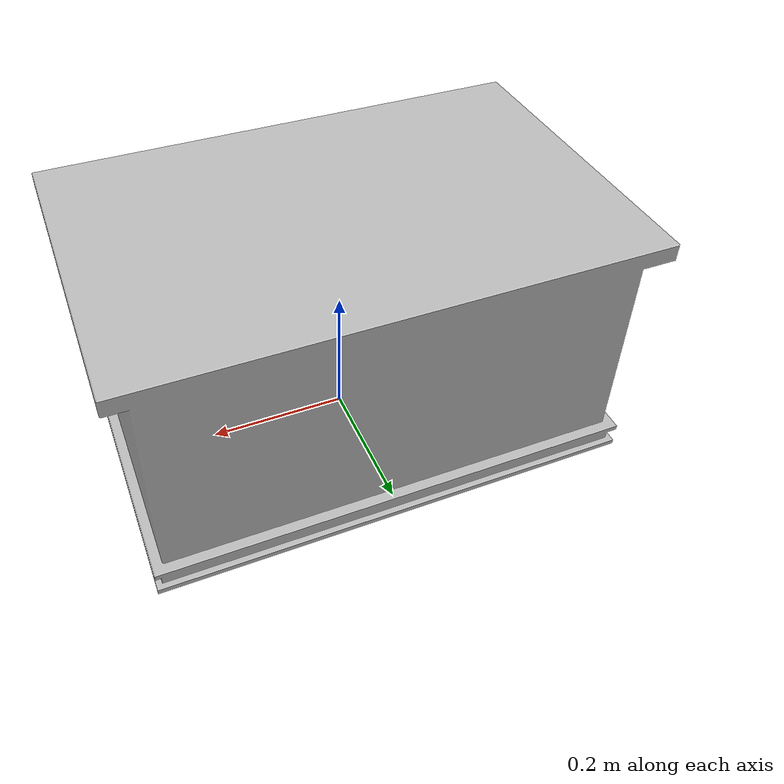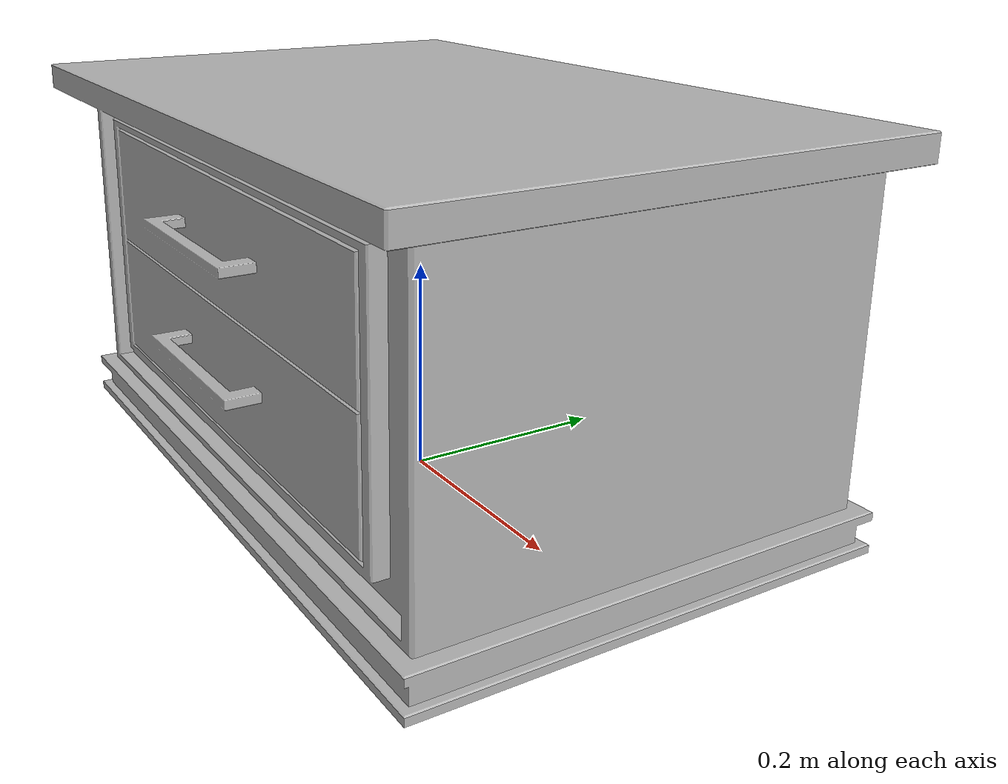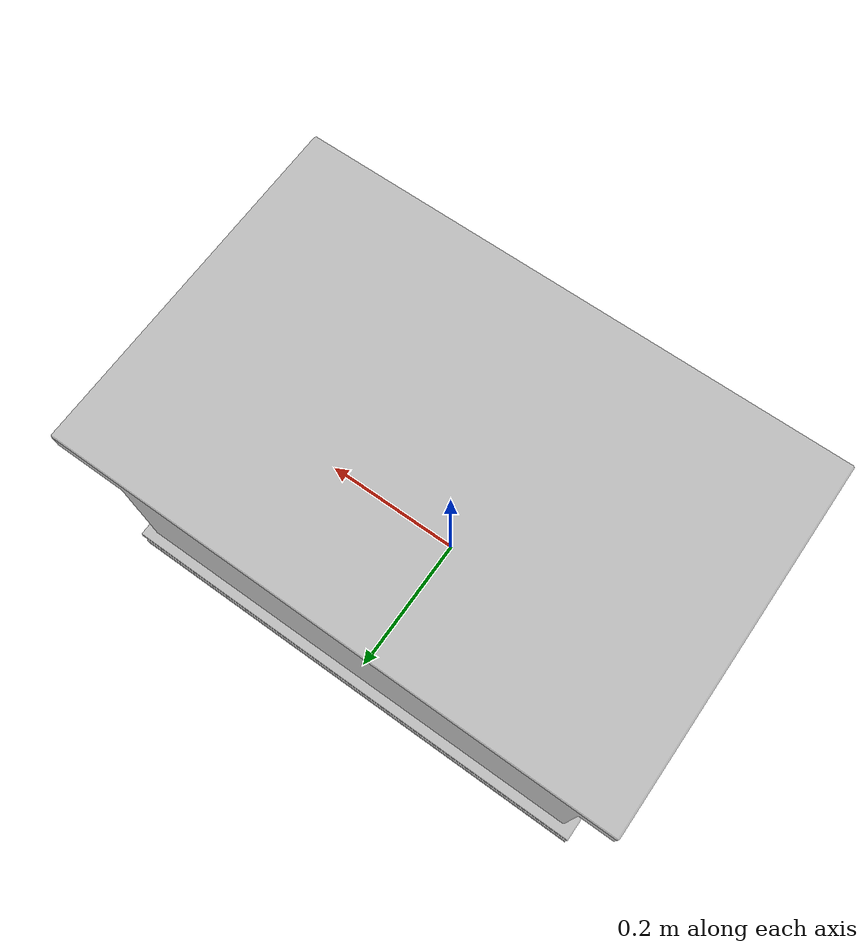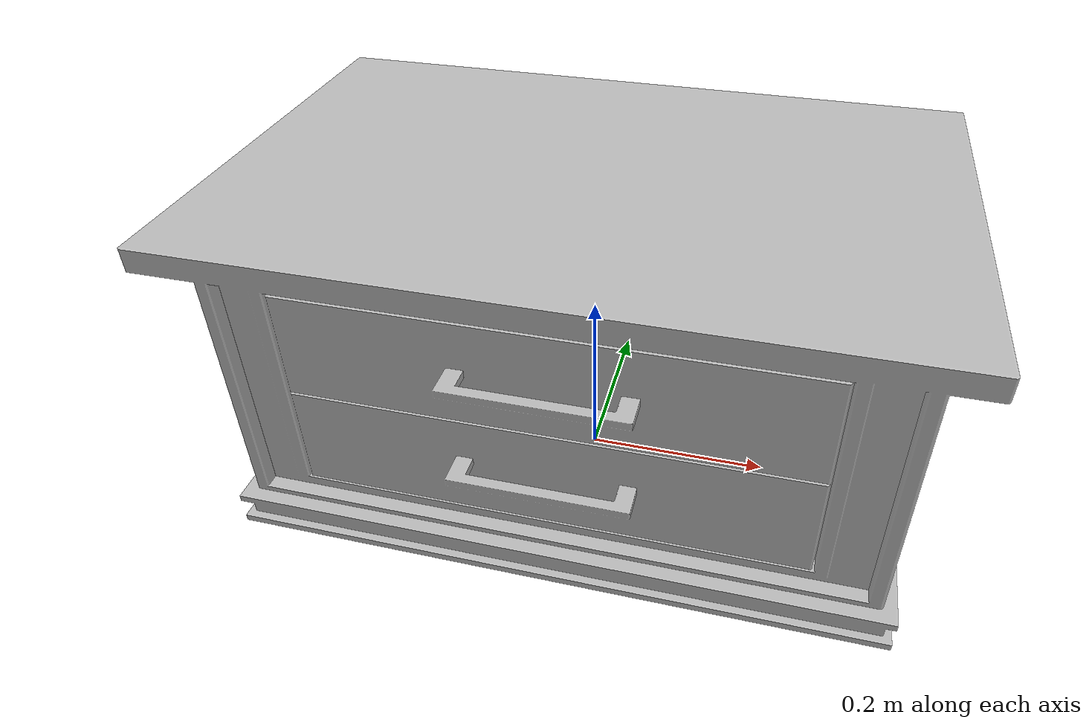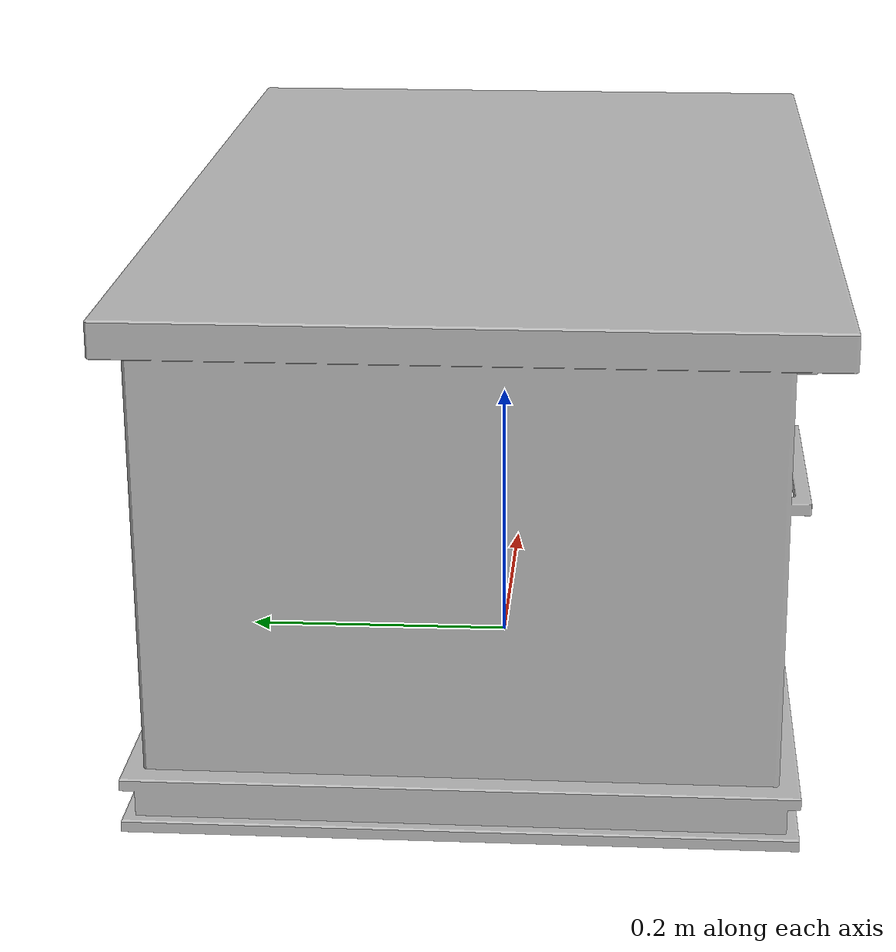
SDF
<?xml version="1.0" ?>
<sdf version="1.6">
  <model name="aws_robomaker_residential_NightStand_01">
    <link name="link">
      <inertial>
        <mass>13.6</mass>

        <inertia>
          <ixx>0.6165</ixx>
          <ixy>0</ixy>
          <ixz>0</ixz>
          <iyy>1.29664</iyy>
          <iyz>0</iyz>
          <izz>0.7706</izz>
        </inertia>

      </inertial>
      <collision name="collision">
        <geometry>
          <mesh>
            <uri>model://aws_robomaker_residential_NightStand_01/meshes/aws_NightStand_01_collision.DAE</uri>
            <scale>1 1 0.53</scale>
          </mesh>
        </geometry>
      </collision>
      <visual name="visual">
	    <geometry>
          <mesh>
            <uri>model://aws_robomaker_residential_NightStand_01/meshes/aws_NightStand_01_visual.DAE</uri>
            <scale>1 1 0.53</scale>
          </mesh>
        </geometry>
      <meta> <layer> 1 </layer></meta>
</visual>
    </link>
    <static>1</static>
  </model>
</sdf>
